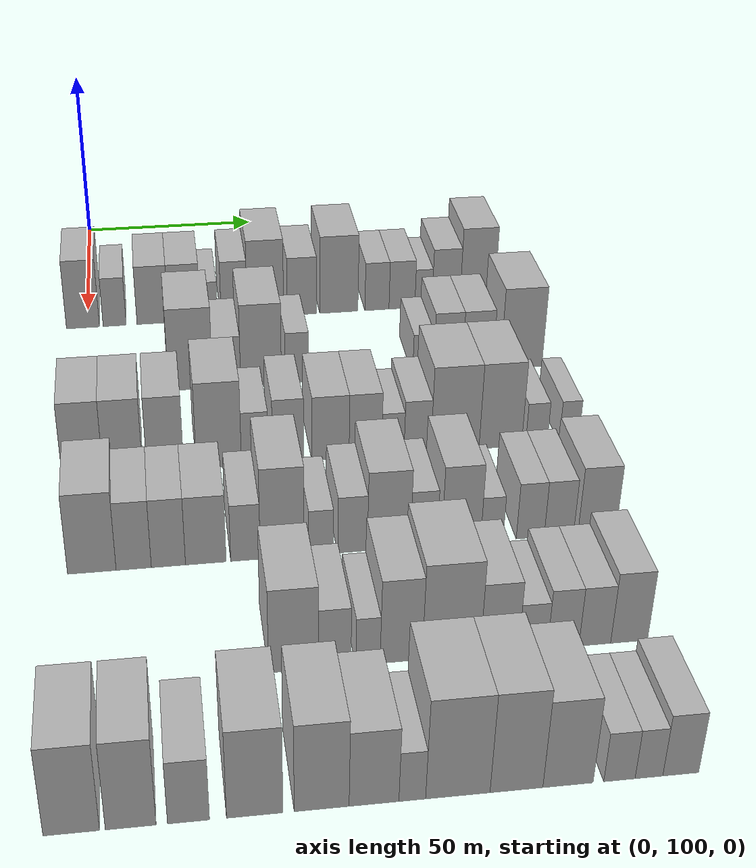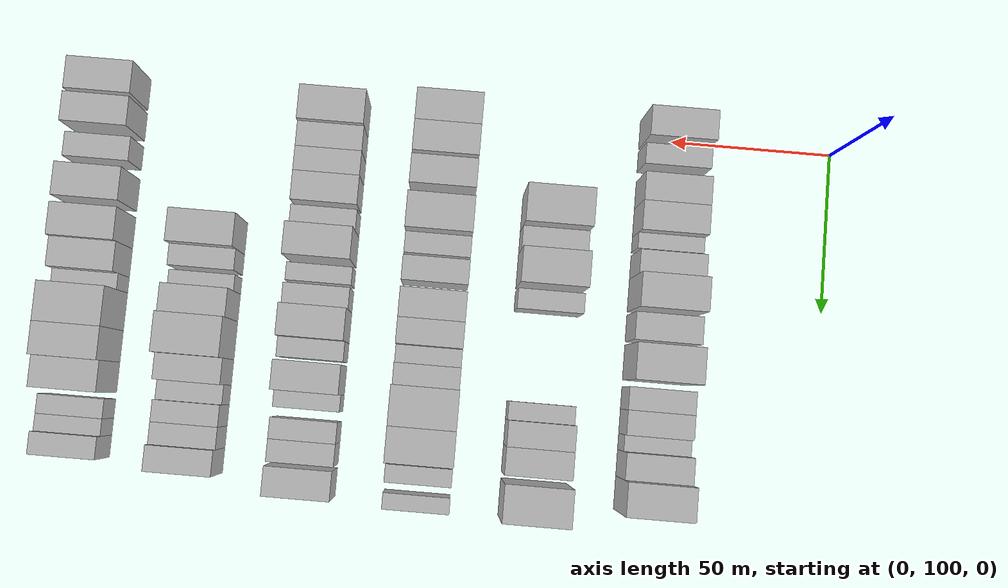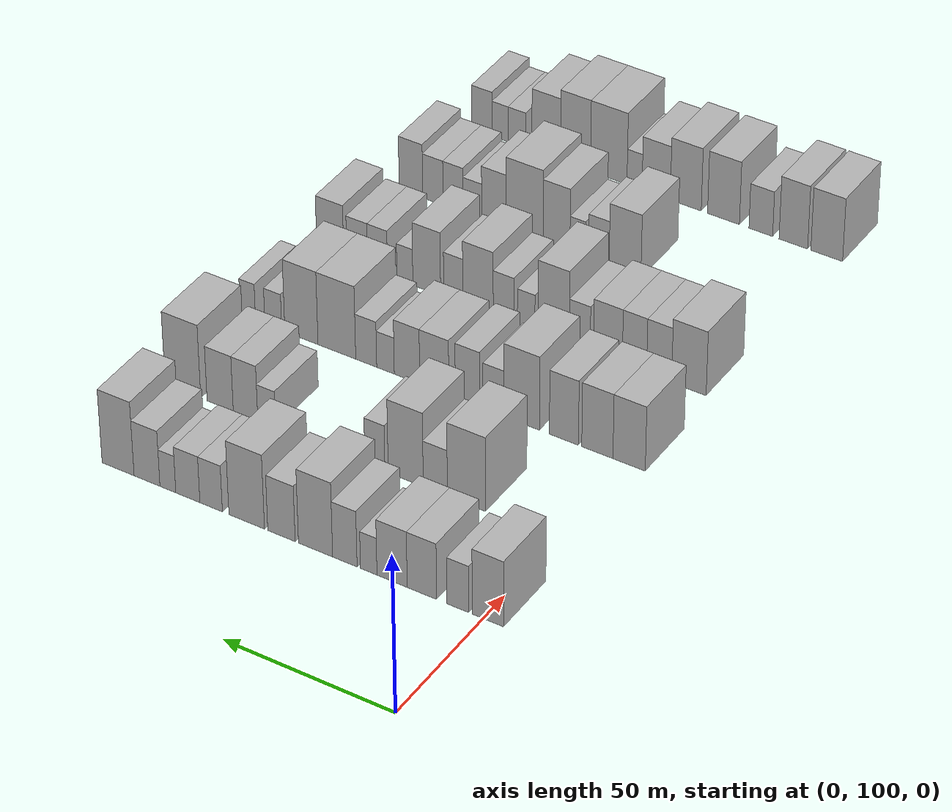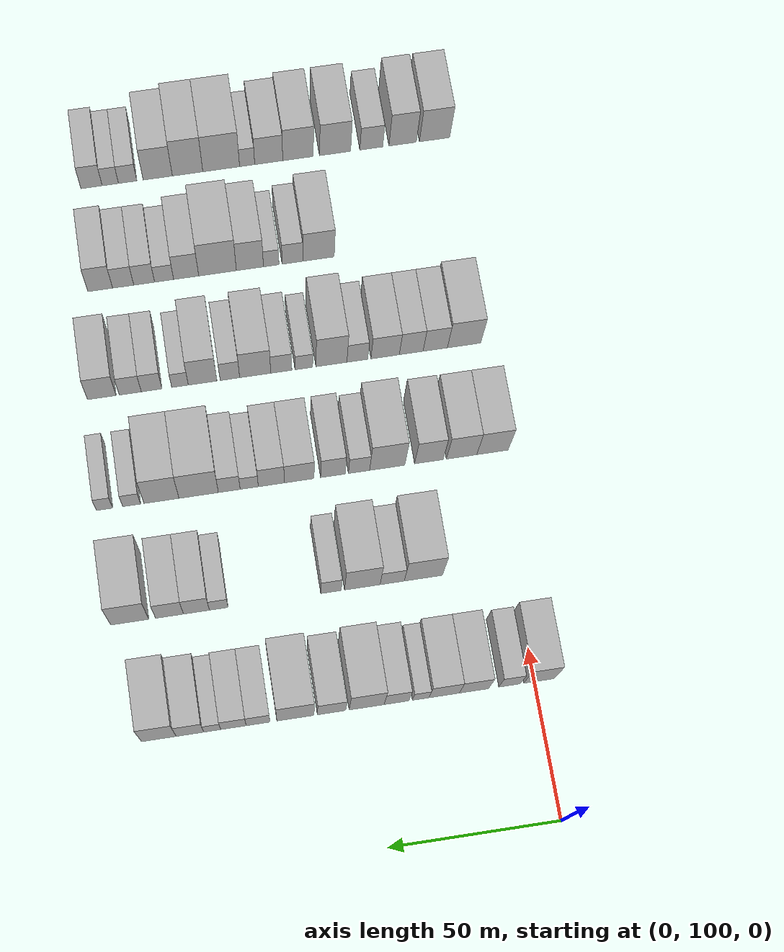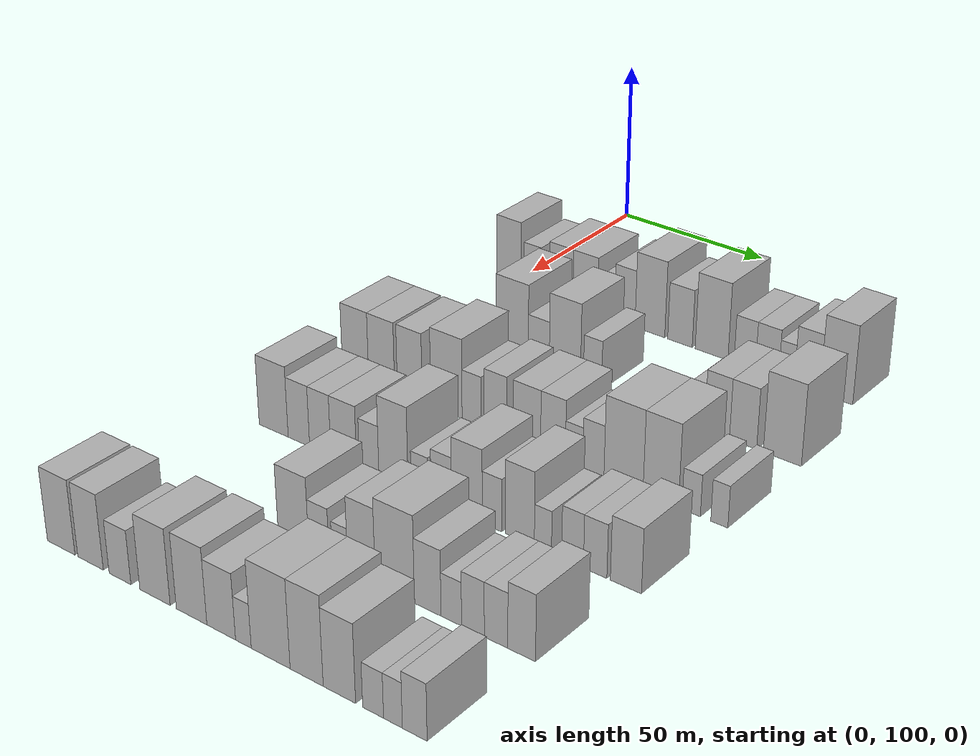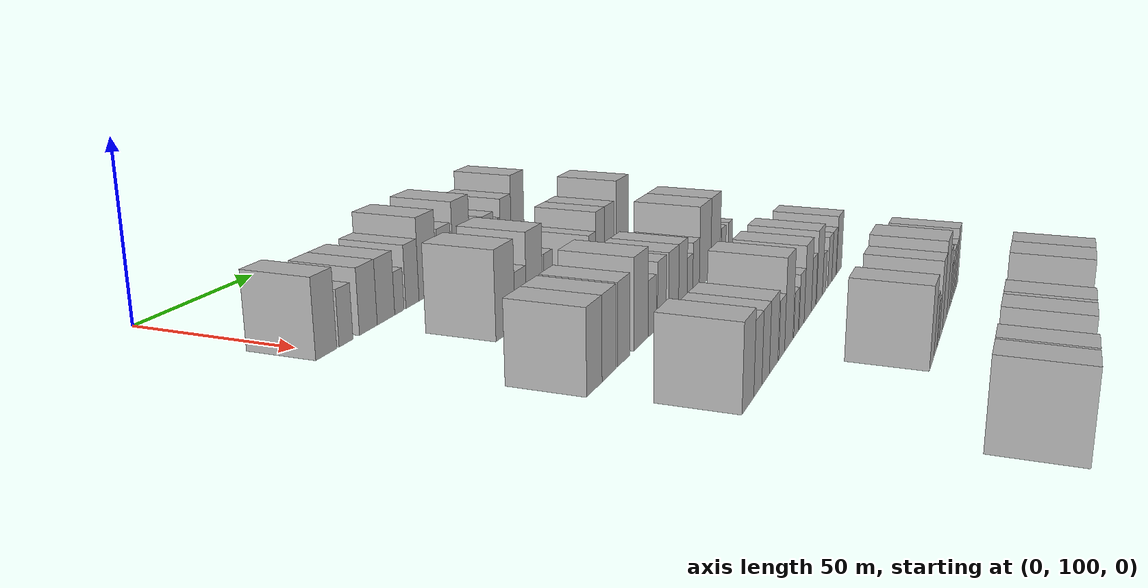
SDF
<sdf version="1.6">
 <world name="default">
  <model name="building_76">
   <static>1</static>
   <pose>50.0000 98.7060 0 0.000000 0.000000 0.000000</pose>
   <link name="link">
    <pose>0 0 10.50 0 0 0</pose>
    <collision name="collision"><geometry><box><size>20.0000 9.0643 21.0000</size></box></geometry></collision>
    <visual name="visual">
     <cast_shadows>0</cast_shadows>
     <geometry><box><size>20.0000 9.0643 21.0000</size></box></geometry>
     <material>
      <script>
       <uri>model://HANNAS_wall/materials/scripts</uri>
       <uri>model://HANNAS_wall/materials/textures</uri>
       <name>vrc/HANNAS_wall</name>
      </script>
     </material>
    </visual>
   </link>
  </model>
  <model name="building_77">
   <static>1</static>
   <pose>50.0000 107.4176 0 0.000000 0.000000 0.000000</pose>
   <link name="link">
    <pose>0 0 7.50 0 0 0</pose>
    <collision name="collision"><geometry><box><size>20.0000 6.3589 15.0000</size></box></geometry></collision>
    <visual name="visual">
     <cast_shadows>0</cast_shadows>
     <geometry><box><size>20.0000 6.3589 15.0000</size></box></geometry>
     <material>
      <script>
       <uri>model://HANNAS_wall/materials/scripts</uri>
       <uri>model://HANNAS_wall/materials/textures</uri>
       <name>vrc/HANNAS_wall</name>
      </script>
     </material>
    </visual>
   </link>
  </model>
  <model name="building_78">
   <static>1</static>
   <pose>50.0000 117.9117 0 0.000000 0.000000 0.000000</pose>
   <link name="link">
    <pose>0 0 9.00 0 0 0</pose>
    <collision name="collision"><geometry><box><size>20.0000 8.6293 18.0000</size></box></geometry></collision>
    <visual name="visual">
     <cast_shadows>0</cast_shadows>
     <geometry><box><size>20.0000 8.6293 18.0000</size></box></geometry>
     <material>
      <script>
       <uri>model://HANNAS_wall/materials/scripts</uri>
       <uri>model://HANNAS_wall/materials/textures</uri>
       <name>vrc/HANNAS_wall</name>
      </script>
     </material>
    </visual>
   </link>
  </model>
  <model name="building_79">
   <static>1</static>
   <pose>50.0000 126.6801 0 0.000000 0.000000 0.000000</pose>
   <link name="link">
    <pose>0 0 9.00 0 0 0</pose>
    <collision name="collision"><geometry><box><size>20.0000 8.9076 18.0000</size></box></geometry></collision>
    <visual name="visual">
     <cast_shadows>0</cast_shadows>
     <geometry><box><size>20.0000 8.9076 18.0000</size></box></geometry>
     <material>
      <script>
       <uri>model://HANNAS_wall/materials/scripts</uri>
       <uri>model://HANNAS_wall/materials/textures</uri>
       <name>vrc/HANNAS_wall</name>
      </script>
     </material>
    </visual>
   </link>
  </model>
  <model name="building_80">
   <static>1</static>
   <pose>50.0000 133.5759 0 0.000000 0.000000 0.000000</pose>
   <link name="link">
    <pose>0 0 6.00 0 0 0</pose>
    <collision name="collision"><geometry><box><size>20.0000 4.8840 12.0000</size></box></geometry></collision>
    <visual name="visual">
     <cast_shadows>0</cast_shadows>
     <geometry><box><size>20.0000 4.8840 12.0000</size></box></geometry>
     <material>
      <script>
       <uri>model://HANNAS_wall/materials/scripts</uri>
       <uri>model://HANNAS_wall/materials/textures</uri>
       <name>vrc/HANNAS_wall</name>
      </script>
     </material>
    </visual>
   </link>
  </model>
  <model name="building_81">
   <static>1</static>
   <pose>50.0000 140.6579 0 0.000000 0.000000 0.000000</pose>
   <link name="link">
    <pose>0 0 9.00 0 0 0</pose>
    <collision name="collision"><geometry><box><size>20.0000 7.2801 18.0000</size></box></geometry></collision>
    <visual name="visual">
     <cast_shadows>0</cast_shadows>
     <geometry><box><size>20.0000 7.2801 18.0000</size></box></geometry>
     <material>
      <script>
       <uri>model://HANNAS_wall/materials/scripts</uri>
       <uri>model://HANNAS_wall/materials/textures</uri>
       <name>vrc/HANNAS_wall</name>
      </script>
     </material>
    </visual>
   </link>
  </model>
  <model name="building_82">
   <static>1</static>
   <pose>50.0000 149.4227 0 0.000000 0.000000 0.000000</pose>
   <link name="link">
    <pose>0 0 12.00 0 0 0</pose>
    <collision name="collision"><geometry><box><size>20.0000 10.2495 24.0000</size></box></geometry></collision>
    <visual name="visual">
     <cast_shadows>0</cast_shadows>
     <geometry><box><size>20.0000 10.2495 24.0000</size></box></geometry>
     <material>
      <script>
       <uri>model://HANNAS_wall/materials/scripts</uri>
       <uri>model://HANNAS_wall/materials/textures</uri>
       <name>vrc/HANNAS_wall</name>
      </script>
     </material>
    </visual>
   </link>
  </model>
  <model name="building_83">
   <static>1</static>
   <pose>50.0000 159.6834 0 0.000000 0.000000 0.000000</pose>
   <link name="link">
    <pose>0 0 9.00 0 0 0</pose>
    <collision name="collision"><geometry><box><size>20.0000 8.2721 18.0000</size></box></geometry></collision>
    <visual name="visual">
     <cast_shadows>0</cast_shadows>
     <geometry><box><size>20.0000 8.2721 18.0000</size></box></geometry>
     <material>
      <script>
       <uri>model://HANNAS_wall/materials/scripts</uri>
       <uri>model://HANNAS_wall/materials/textures</uri>
       <name>vrc/HANNAS_wall</name>
      </script>
     </material>
    </visual>
   </link>
  </model>
  <model name="building_84">
   <static>1</static>
   <pose>50.0000 170.2281 0 0.000000 0.000000 0.000000</pose>
   <link name="link">
    <pose>0 0 12.00 0 0 0</pose>
    <collision name="collision"><geometry><box><size>20.0000 10.8172 24.0000</size></box></geometry></collision>
    <visual name="visual">
     <cast_shadows>0</cast_shadows>
     <geometry><box><size>20.0000 10.8172 24.0000</size></box></geometry>
     <material>
      <script>
       <uri>model://HANNAS_wall/materials/scripts</uri>
       <uri>model://HANNAS_wall/materials/textures</uri>
       <name>vrc/HANNAS_wall</name>
      </script>
     </material>
    </visual>
   </link>
  </model>
  <model name="building_85">
   <static>1</static>
   <pose>50.0000 181.0844 0 0.000000 0.000000 0.000000</pose>
   <link name="link">
    <pose>0 0 7.50 0 0 0</pose>
    <collision name="collision"><geometry><box><size>20.0000 6.8954 15.0000</size></box></geometry></collision>
    <visual name="visual">
     <cast_shadows>0</cast_shadows>
     <geometry><box><size>20.0000 6.8954 15.0000</size></box></geometry>
     <material>
      <script>
       <uri>model://HANNAS_wall/materials/scripts</uri>
       <uri>model://HANNAS_wall/materials/textures</uri>
       <name>vrc/HANNAS_wall</name>
      </script>
     </material>
    </visual>
   </link>
  </model>
  <model name="building_86">
   <static>1</static>
   <pose>50.0000 188.2424 0 0.000000 0.000000 0.000000</pose>
   <link name="link">
    <pose>0 0 7.50 0 0 0</pose>
    <collision name="collision"><geometry><box><size>20.0000 7.4207 15.0000</size></box></geometry></collision>
    <visual name="visual">
     <cast_shadows>0</cast_shadows>
     <geometry><box><size>20.0000 7.4207 15.0000</size></box></geometry>
     <material>
      <script>
       <uri>model://HANNAS_wall/materials/scripts</uri>
       <uri>model://HANNAS_wall/materials/textures</uri>
       <name>vrc/HANNAS_wall</name>
      </script>
     </material>
    </visual>
   </link>
  </model>
  <model name="building_87">
   <static>1</static>
   <pose>50.0000 194.4109 0 0.000000 0.000000 0.000000</pose>
   <link name="link">
    <pose>0 0 6.00 0 0 0</pose>
    <collision name="collision"><geometry><box><size>20.0000 4.9163 12.0000</size></box></geometry></collision>
    <visual name="visual">
     <cast_shadows>0</cast_shadows>
     <geometry><box><size>20.0000 4.9163 12.0000</size></box></geometry>
     <material>
      <script>
       <uri>model://HANNAS_wall/materials/scripts</uri>
       <uri>model://HANNAS_wall/materials/textures</uri>
       <name>vrc/HANNAS_wall</name>
      </script>
     </material>
    </visual>
   </link>
  </model>
  <model name="building_88">
   <static>1</static>
   <pose>50.0000 200.8878 0 0.000000 0.000000 0.000000</pose>
   <link name="link">
    <pose>0 0 9.00 0 0 0</pose>
    <collision name="collision"><geometry><box><size>20.0000 8.0375 18.0000</size></box></geometry></collision>
    <visual name="visual">
     <cast_shadows>0</cast_shadows>
     <geometry><box><size>20.0000 8.0375 18.0000</size></box></geometry>
     <material>
      <script>
       <uri>model://HANNAS_wall/materials/scripts</uri>
       <uri>model://HANNAS_wall/materials/textures</uri>
       <name>vrc/HANNAS_wall</name>
      </script>
     </material>
    </visual>
   </link>
  </model>
  <model name="building_89">
   <static>1</static>
   <pose>50.0000 209.9086 0 0.000000 0.000000 0.000000</pose>
   <link name="link">
    <pose>0 0 12.00 0 0 0</pose>
    <collision name="collision"><geometry><box><size>20.0000 10.0042 24.0000</size></box></geometry></collision>
    <visual name="visual">
     <cast_shadows>0</cast_shadows>
     <geometry><box><size>20.0000 10.0042 24.0000</size></box></geometry>
     <material>
      <script>
       <uri>model://HANNAS_wall/materials/scripts</uri>
       <uri>model://HANNAS_wall/materials/textures</uri>
       <name>vrc/HANNAS_wall</name>
      </script>
     </material>
    </visual>
   </link>
  </model>
  <model name="building_206">
   <static>1</static>
   <pose>85.0000 126.7617 0 0.000000 0.000000 0.000000</pose>
   <link name="link">
    <pose>0 0 12.00 0 0 0</pose>
    <collision name="collision"><geometry><box><size>20.0000 11.4113 24.0000</size></box></geometry></collision>
    <visual name="visual">
     <cast_shadows>0</cast_shadows>
     <geometry><box><size>20.0000 11.4113 24.0000</size></box></geometry>
     <material>
      <script>
       <uri>model://HANNAS_wall/materials/scripts</uri>
       <uri>model://HANNAS_wall/materials/textures</uri>
       <name>vrc/HANNAS_wall</name>
      </script>
     </material>
    </visual>
   </link>
  </model>
  <model name="building_207">
   <static>1</static>
   <pose>85.0000 136.0954 0 0.000000 0.000000 0.000000</pose>
   <link name="link">
    <pose>0 0 7.50 0 0 0</pose>
    <collision name="collision"><geometry><box><size>20.0000 7.2561 15.0000</size></box></geometry></collision>
    <visual name="visual">
     <cast_shadows>0</cast_shadows>
     <geometry><box><size>20.0000 7.2561 15.0000</size></box></geometry>
     <material>
      <script>
       <uri>model://HANNAS_wall/materials/scripts</uri>
       <uri>model://HANNAS_wall/materials/textures</uri>
       <name>vrc/HANNAS_wall</name>
      </script>
     </material>
    </visual>
   </link>
  </model>
  <model name="building_208">
   <static>1</static>
   <pose>85.0000 145.0219 0 0.000000 0.000000 0.000000</pose>
   <link name="link">
    <pose>0 0 12.00 0 0 0</pose>
    <collision name="collision"><geometry><box><size>20.0000 10.5969 24.0000</size></box></geometry></collision>
    <visual name="visual">
     <cast_shadows>0</cast_shadows>
     <geometry><box><size>20.0000 10.5969 24.0000</size></box></geometry>
     <material>
      <script>
       <uri>model://HANNAS_wall/materials/scripts</uri>
       <uri>model://HANNAS_wall/materials/textures</uri>
       <name>vrc/HANNAS_wall</name>
      </script>
     </material>
    </visual>
   </link>
  </model>
  <model name="building_209">
   <static>1</static>
   <pose>85.0000 154.3644 0 0.000000 0.000000 0.000000</pose>
   <link name="link">
    <pose>0 0 7.50 0 0 0</pose>
    <collision name="collision"><geometry><box><size>20.0000 6.0882 15.0000</size></box></geometry></collision>
    <visual name="visual">
     <cast_shadows>0</cast_shadows>
     <geometry><box><size>20.0000 6.0882 15.0000</size></box></geometry>
     <material>
      <script>
       <uri>model://HANNAS_wall/materials/scripts</uri>
       <uri>model://HANNAS_wall/materials/textures</uri>
       <name>vrc/HANNAS_wall</name>
      </script>
     </material>
    </visual>
   </link>
  </model>
  <model name="building_210">
   <static>1</static>
   <pose>85.0000 187.7151 0 0.000000 0.000000 0.000000</pose>
   <link name="link">
    <pose>0 0 6.00 0 0 0</pose>
    <collision name="collision"><geometry><box><size>20.0000 5.5377 12.0000</size></box></geometry></collision>
    <visual name="visual">
     <cast_shadows>0</cast_shadows>
     <geometry><box><size>20.0000 5.5377 12.0000</size></box></geometry>
     <material>
      <script>
       <uri>model://HANNAS_wall/materials/scripts</uri>
       <uri>model://HANNAS_wall/materials/textures</uri>
       <name>vrc/HANNAS_wall</name>
      </script>
     </material>
    </visual>
   </link>
  </model>
  <model name="building_211">
   <static>1</static>
   <pose>85.0000 194.3301 0 0.000000 0.000000 0.000000</pose>
   <link name="link">
    <pose>0 0 9.00 0 0 0</pose>
    <collision name="collision"><geometry><box><size>20.0000 7.6924 18.0000</size></box></geometry></collision>
    <visual name="visual">
     <cast_shadows>0</cast_shadows>
     <geometry><box><size>20.0000 7.6924 18.0000</size></box></geometry>
     <material>
      <script>
       <uri>model://HANNAS_wall/materials/scripts</uri>
       <uri>model://HANNAS_wall/materials/textures</uri>
       <name>vrc/HANNAS_wall</name>
      </script>
     </material>
    </visual>
   </link>
  </model>
  <model name="building_212">
   <static>1</static>
   <pose>85.0000 202.2963 0 0.000000 0.000000 0.000000</pose>
   <link name="link">
    <pose>0 0 9.00 0 0 0</pose>
    <collision name="collision"><geometry><box><size>20.0000 8.2400 18.0000</size></box></geometry></collision>
    <visual name="visual">
     <cast_shadows>0</cast_shadows>
     <geometry><box><size>20.0000 8.2400 18.0000</size></box></geometry>
     <material>
      <script>
       <uri>model://HANNAS_wall/materials/scripts</uri>
       <uri>model://HANNAS_wall/materials/textures</uri>
       <name>vrc/HANNAS_wall</name>
      </script>
     </material>
    </visual>
   </link>
  </model>
  <model name="building_213">
   <static>1</static>
   <pose>85.0000 214.0444 0 0.000000 0.000000 0.000000</pose>
   <link name="link">
    <pose>0 0 12.00 0 0 0</pose>
    <collision name="collision"><geometry><box><size>20.0000 11.2562 24.0000</size></box></geometry></collision>
    <visual name="visual">
     <cast_shadows>0</cast_shadows>
     <geometry><box><size>20.0000 11.2562 24.0000</size></box></geometry>
     <material>
      <script>
       <uri>model://HANNAS_wall/materials/scripts</uri>
       <uri>model://HANNAS_wall/materials/textures</uri>
       <name>vrc/HANNAS_wall</name>
      </script>
     </material>
    </visual>
   </link>
  </model>
  <model name="building_310">
   <static>1</static>
   <pose>120.0000 99.5489 0 0.000000 0.000000 0.000000</pose>
   <link name="link">
    <pose>0 0 10.50 0 0 0</pose>
    <collision name="collision"><geometry><box><size>20.0000 9.5973 21.0000</size></box></geometry></collision>
    <visual name="visual">
     <cast_shadows>0</cast_shadows>
     <geometry><box><size>20.0000 9.5973 21.0000</size></box></geometry>
     <material>
      <script>
       <uri>model://HANNAS_wall/materials/scripts</uri>
       <uri>model://HANNAS_wall/materials/textures</uri>
       <name>vrc/HANNAS_wall</name>
      </script>
     </material>
    </visual>
   </link>
  </model>
  <model name="building_311">
   <static>1</static>
   <pose>120.0000 109.0068 0 0.000000 0.000000 0.000000</pose>
   <link name="link">
    <pose>0 0 10.50 0 0 0</pose>
    <collision name="collision"><geometry><box><size>20.0000 9.3184 21.0000</size></box></geometry></collision>
    <visual name="visual">
     <cast_shadows>0</cast_shadows>
     <geometry><box><size>20.0000 9.3184 21.0000</size></box></geometry>
     <material>
      <script>
       <uri>model://HANNAS_wall/materials/scripts</uri>
       <uri>model://HANNAS_wall/materials/textures</uri>
       <name>vrc/HANNAS_wall</name>
      </script>
     </material>
    </visual>
   </link>
  </model>
  <model name="building_312">
   <static>1</static>
   <pose>120.0000 119.0253 0 0.000000 0.000000 0.000000</pose>
   <link name="link">
    <pose>0 0 10.50 0 0 0</pose>
    <collision name="collision"><geometry><box><size>20.0000 8.7186 21.0000</size></box></geometry></collision>
    <visual name="visual">
     <cast_shadows>0</cast_shadows>
     <geometry><box><size>20.0000 8.7186 21.0000</size></box></geometry>
     <material>
      <script>
       <uri>model://HANNAS_wall/materials/scripts</uri>
       <uri>model://HANNAS_wall/materials/textures</uri>
       <name>vrc/HANNAS_wall</name>
      </script>
     </material>
    </visual>
   </link>
  </model>
  <model name="building_313">
   <static>1</static>
   <pose>120.0000 131.7497 0 0.000000 0.000000 0.000000</pose>
   <link name="link">
    <pose>0 0 12.00 0 0 0</pose>
    <collision name="collision"><geometry><box><size>20.0000 10.7303 24.0000</size></box></geometry></collision>
    <visual name="visual">
     <cast_shadows>0</cast_shadows>
     <geometry><box><size>20.0000 10.7303 24.0000</size></box></geometry>
     <material>
      <script>
       <uri>model://HANNAS_wall/materials/scripts</uri>
       <uri>model://HANNAS_wall/materials/textures</uri>
       <name>vrc/HANNAS_wall</name>
      </script>
     </material>
    </visual>
   </link>
  </model>
  <model name="building_314">
   <static>1</static>
   <pose>120.0000 140.3352 0 0.000000 0.000000 0.000000</pose>
   <link name="link">
    <pose>0 0 7.50 0 0 0</pose>
    <collision name="collision"><geometry><box><size>20.0000 6.4406 15.0000</size></box></geometry></collision>
    <visual name="visual">
     <cast_shadows>0</cast_shadows>
     <geometry><box><size>20.0000 6.4406 15.0000</size></box></geometry>
     <material>
      <script>
       <uri>model://HANNAS_wall/materials/scripts</uri>
       <uri>model://HANNAS_wall/materials/textures</uri>
       <name>vrc/HANNAS_wall</name>
      </script>
     </material>
    </visual>
   </link>
  </model>
  <model name="building_315">
   <static>1</static>
   <pose>120.0000 148.2932 0 0.000000 0.000000 0.000000</pose>
   <link name="link">
    <pose>0 0 9.00 0 0 0</pose>
    <collision name="collision"><geometry><box><size>20.0000 7.4754 18.0000</size></box></geometry></collision>
    <visual name="visual">
     <cast_shadows>0</cast_shadows>
     <geometry><box><size>20.0000 7.4754 18.0000</size></box></geometry>
     <material>
      <script>
       <uri>model://HANNAS_wall/materials/scripts</uri>
       <uri>model://HANNAS_wall/materials/textures</uri>
       <name>vrc/HANNAS_wall</name>
      </script>
     </material>
    </visual>
   </link>
  </model>
  <model name="building_316">
   <static>1</static>
   <pose>120.0000 158.5292 0 0.000000 0.000000 0.000000</pose>
   <link name="link">
    <pose>0 0 9.00 0 0 0</pose>
    <collision name="collision"><geometry><box><size>20.0000 8.9966 18.0000</size></box></geometry></collision>
    <visual name="visual">
     <cast_shadows>0</cast_shadows>
     <geometry><box><size>20.0000 8.9966 18.0000</size></box></geometry>
     <material>
      <script>
       <uri>model://HANNAS_wall/materials/scripts</uri>
       <uri>model://HANNAS_wall/materials/textures</uri>
       <name>vrc/HANNAS_wall</name>
      </script>
     </material>
    </visual>
   </link>
  </model>
  <model name="building_317">
   <static>1</static>
   <pose>120.0000 166.9829 0 0.000000 0.000000 0.000000</pose>
   <link name="link">
    <pose>0 0 9.00 0 0 0</pose>
    <collision name="collision"><geometry><box><size>20.0000 7.9108 18.0000</size></box></geometry></collision>
    <visual name="visual">
     <cast_shadows>0</cast_shadows>
     <geometry><box><size>20.0000 7.9108 18.0000</size></box></geometry>
     <material>
      <script>
       <uri>model://HANNAS_wall/materials/scripts</uri>
       <uri>model://HANNAS_wall/materials/textures</uri>
       <name>vrc/HANNAS_wall</name>
      </script>
     </material>
    </visual>
   </link>
  </model>
  <model name="building_318">
   <static>1</static>
   <pose>120.0000 173.6834 0 0.000000 0.000000 0.000000</pose>
   <link name="link">
    <pose>0 0 6.00 0 0 0</pose>
    <collision name="collision"><geometry><box><size>20.0000 5.4902 12.0000</size></box></geometry></collision>
    <visual name="visual">
     <cast_shadows>0</cast_shadows>
     <geometry><box><size>20.0000 5.4902 12.0000</size></box></geometry>
     <material>
      <script>
       <uri>model://HANNAS_wall/materials/scripts</uri>
       <uri>model://HANNAS_wall/materials/textures</uri>
       <name>vrc/HANNAS_wall</name>
      </script>
     </material>
    </visual>
   </link>
  </model>
  <model name="building_319">
   <static>1</static>
   <pose>120.0000 179.7215 0 0.000000 0.000000 0.000000</pose>
   <link name="link">
    <pose>0 0 7.50 0 0 0</pose>
    <collision name="collision"><geometry><box><size>20.0000 6.5859 15.0000</size></box></geometry></collision>
    <visual name="visual">
     <cast_shadows>0</cast_shadows>
     <geometry><box><size>20.0000 6.5859 15.0000</size></box></geometry>
     <material>
      <script>
       <uri>model://HANNAS_wall/materials/scripts</uri>
       <uri>model://HANNAS_wall/materials/textures</uri>
       <name>vrc/HANNAS_wall</name>
      </script>
     </material>
    </visual>
   </link>
  </model>
  <model name="building_320">
   <static>1</static>
   <pose>120.0000 188.9652 0 0.000000 0.000000 0.000000</pose>
   <link name="link">
    <pose>0 0 12.00 0 0 0</pose>
    <collision name="collision"><geometry><box><size>20.0000 11.9015 24.0000</size></box></geometry></collision>
    <visual name="visual">
     <cast_shadows>0</cast_shadows>
     <geometry><box><size>20.0000 11.9015 24.0000</size></box></geometry>
     <material>
      <script>
       <uri>model://HANNAS_wall/materials/scripts</uri>
       <uri>model://HANNAS_wall/materials/textures</uri>
       <name>vrc/HANNAS_wall</name>
      </script>
     </material>
    </visual>
   </link>
  </model>
  <model name="building_321">
   <static>1</static>
   <pose>120.0000 200.1909 0 0.000000 0.000000 0.000000</pose>
   <link name="link">
    <pose>0 0 12.00 0 0 0</pose>
    <collision name="collision"><geometry><box><size>20.0000 10.5499 24.0000</size></box></geometry></collision>
    <visual name="visual">
     <cast_shadows>0</cast_shadows>
     <geometry><box><size>20.0000 10.5499 24.0000</size></box></geometry>
     <material>
      <script>
       <uri>model://HANNAS_wall/materials/scripts</uri>
       <uri>model://HANNAS_wall/materials/textures</uri>
       <name>vrc/HANNAS_wall</name>
      </script>
     </material>
    </visual>
   </link>
  </model>
  <model name="building_322">
   <static>1</static>
   <pose>120.0000 209.1626 0 0.000000 0.000000 0.000000</pose>
   <link name="link">
    <pose>0 0 6.00 0 0 0</pose>
    <collision name="collision"><geometry><box><size>20.0000 5.3935 12.0000</size></box></geometry></collision>
    <visual name="visual">
     <cast_shadows>0</cast_shadows>
     <geometry><box><size>20.0000 5.3935 12.0000</size></box></geometry>
     <material>
      <script>
       <uri>model://HANNAS_wall/materials/scripts</uri>
       <uri>model://HANNAS_wall/materials/textures</uri>
       <name>vrc/HANNAS_wall</name>
      </script>
     </material>
    </visual>
   </link>
  </model>
  <model name="building_323">
   <static>1</static>
   <pose>120.0000 217.3057 0 0.000000 0.000000 0.000000</pose>
   <link name="link">
    <pose>0 0 6.00 0 0 0</pose>
    <collision name="collision"><geometry><box><size>20.0000 4.8926 12.0000</size></box></geometry></collision>
    <visual name="visual">
     <cast_shadows>0</cast_shadows>
     <geometry><box><size>20.0000 4.8926 12.0000</size></box></geometry>
     <material>
      <script>
       <uri>model://HANNAS_wall/materials/scripts</uri>
       <uri>model://HANNAS_wall/materials/textures</uri>
       <name>vrc/HANNAS_wall</name>
      </script>
     </material>
    </visual>
   </link>
  </model>
  <model name="building_440">
   <static>1</static>
   <pose>155.0000 101.9690 0 0.000000 0.000000 0.000000</pose>
   <link name="link">
    <pose>0 0 10.50 0 0 0</pose>
    <collision name="collision"><geometry><box><size>20.0000 10.3962 21.0000</size></box></geometry></collision>
    <visual name="visual">
     <cast_shadows>0</cast_shadows>
     <geometry><box><size>20.0000 10.3962 21.0000</size></box></geometry>
     <material>
      <script>
       <uri>model://HANNAS_wall/materials/scripts</uri>
       <uri>model://HANNAS_wall/materials/textures</uri>
       <name>vrc/HANNAS_wall</name>
      </script>
     </material>
    </visual>
   </link>
  </model>
  <model name="building_441">
   <static>1</static>
   <pose>155.0000 110.9566 0 0.000000 0.000000 0.000000</pose>
   <link name="link">
    <pose>0 0 9.00 0 0 0</pose>
    <collision name="collision"><geometry><box><size>20.0000 7.5789 18.0000</size></box></geometry></collision>
    <visual name="visual">
     <cast_shadows>0</cast_shadows>
     <geometry><box><size>20.0000 7.5789 18.0000</size></box></geometry>
     <material>
      <script>
       <uri>model://HANNAS_wall/materials/scripts</uri>
       <uri>model://HANNAS_wall/materials/textures</uri>
       <name>vrc/HANNAS_wall</name>
      </script>
     </material>
    </visual>
   </link>
  </model>
  <model name="building_442">
   <static>1</static>
   <pose>155.0000 118.4421 0 0.000000 0.000000 0.000000</pose>
   <link name="link">
    <pose>0 0 9.00 0 0 0</pose>
    <collision name="collision"><geometry><box><size>20.0000 7.3921 18.0000</size></box></geometry></collision>
    <visual name="visual">
     <cast_shadows>0</cast_shadows>
     <geometry><box><size>20.0000 7.3921 18.0000</size></box></geometry>
     <material>
      <script>
       <uri>model://HANNAS_wall/materials/scripts</uri>
       <uri>model://HANNAS_wall/materials/textures</uri>
       <name>vrc/HANNAS_wall</name>
      </script>
     </material>
    </visual>
   </link>
  </model>
  <model name="building_443">
   <static>1</static>
   <pose>155.0000 126.5543 0 0.000000 0.000000 0.000000</pose>
   <link name="link">
    <pose>0 0 9.00 0 0 0</pose>
    <collision name="collision"><geometry><box><size>20.0000 8.8324 18.0000</size></box></geometry></collision>
    <visual name="visual">
     <cast_shadows>0</cast_shadows>
     <geometry><box><size>20.0000 8.8324 18.0000</size></box></geometry>
     <material>
      <script>
       <uri>model://HANNAS_wall/materials/scripts</uri>
       <uri>model://HANNAS_wall/materials/textures</uri>
       <name>vrc/HANNAS_wall</name>
      </script>
     </material>
    </visual>
   </link>
  </model>
  <model name="building_444">
   <static>1</static>
   <pose>155.0000 135.2045 0 0.000000 0.000000 0.000000</pose>
   <link name="link">
    <pose>0 0 7.50 0 0 0</pose>
    <collision name="collision"><geometry><box><size>20.0000 6.4680 15.0000</size></box></geometry></collision>
    <visual name="visual">
     <cast_shadows>0</cast_shadows>
     <geometry><box><size>20.0000 6.4680 15.0000</size></box></geometry>
     <material>
      <script>
       <uri>model://HANNAS_wall/materials/scripts</uri>
       <uri>model://HANNAS_wall/materials/textures</uri>
       <name>vrc/HANNAS_wall</name>
      </script>
     </material>
    </visual>
   </link>
  </model>
  <model name="building_445">
   <static>1</static>
   <pose>155.0000 143.2508 0 0.000000 0.000000 0.000000</pose>
   <link name="link">
    <pose>0 0 12.00 0 0 0</pose>
    <collision name="collision"><geometry><box><size>20.0000 9.6246 24.0000</size></box></geometry></collision>
    <visual name="visual">
     <cast_shadows>0</cast_shadows>
     <geometry><box><size>20.0000 9.6246 24.0000</size></box></geometry>
     <material>
      <script>
       <uri>model://HANNAS_wall/materials/scripts</uri>
       <uri>model://HANNAS_wall/materials/textures</uri>
       <name>vrc/HANNAS_wall</name>
      </script>
     </material>
    </visual>
   </link>
  </model>
  <model name="building_446">
   <static>1</static>
   <pose>155.0000 151.7857 0 0.000000 0.000000 0.000000</pose>
   <link name="link">
    <pose>0 0 6.00 0 0 0</pose>
    <collision name="collision"><geometry><box><size>20.0000 5.4452 12.0000</size></box></geometry></collision>
    <visual name="visual">
     <cast_shadows>0</cast_shadows>
     <geometry><box><size>20.0000 5.4452 12.0000</size></box></geometry>
     <material>
      <script>
       <uri>model://HANNAS_wall/materials/scripts</uri>
       <uri>model://HANNAS_wall/materials/textures</uri>
       <name>vrc/HANNAS_wall</name>
      </script>
     </material>
    </visual>
   </link>
  </model>
  <model name="building_447">
   <static>1</static>
   <pose>155.0000 158.7790 0 0.000000 0.000000 0.000000</pose>
   <link name="link">
    <pose>0 0 7.50 0 0 0</pose>
    <collision name="collision"><geometry><box><size>20.0000 6.5415 15.0000</size></box></geometry></collision>
    <visual name="visual">
     <cast_shadows>0</cast_shadows>
     <geometry><box><size>20.0000 6.5415 15.0000</size></box></geometry>
     <material>
      <script>
       <uri>model://HANNAS_wall/materials/scripts</uri>
       <uri>model://HANNAS_wall/materials/textures</uri>
       <name>vrc/HANNAS_wall</name>
      </script>
     </material>
    </visual>
   </link>
  </model>
  <model name="building_448">
   <static>1</static>
   <pose>155.0000 166.8410 0 0.000000 0.000000 0.000000</pose>
   <link name="link">
    <pose>0 0 10.50 0 0 0</pose>
    <collision name="collision"><geometry><box><size>20.0000 9.5825 21.0000</size></box></geometry></collision>
    <visual name="visual">
     <cast_shadows>0</cast_shadows>
     <geometry><box><size>20.0000 9.5825 21.0000</size></box></geometry>
     <material>
      <script>
       <uri>model://HANNAS_wall/materials/scripts</uri>
       <uri>model://HANNAS_wall/materials/textures</uri>
       <name>vrc/HANNAS_wall</name>
      </script>
     </material>
    </visual>
   </link>
  </model>
  <model name="building_449">
   <static>1</static>
   <pose>155.0000 174.6378 0 0.000000 0.000000 0.000000</pose>
   <link name="link">
    <pose>0 0 7.50 0 0 0</pose>
    <collision name="collision"><geometry><box><size>20.0000 6.0113 15.0000</size></box></geometry></collision>
    <visual name="visual">
     <cast_shadows>0</cast_shadows>
     <geometry><box><size>20.0000 6.0113 15.0000</size></box></geometry>
     <material>
      <script>
       <uri>model://HANNAS_wall/materials/scripts</uri>
       <uri>model://HANNAS_wall/materials/textures</uri>
       <name>vrc/HANNAS_wall</name>
      </script>
     </material>
    </visual>
   </link>
  </model>
  <model name="building_450">
   <static>1</static>
   <pose>155.0000 183.0548 0 0.000000 0.000000 0.000000</pose>
   <link name="link">
    <pose>0 0 10.50 0 0 0</pose>
    <collision name="collision"><geometry><box><size>20.0000 8.8227 21.0000</size></box></geometry></collision>
    <visual name="visual">
     <cast_shadows>0</cast_shadows>
     <geometry><box><size>20.0000 8.8227 21.0000</size></box></geometry>
     <material>
      <script>
       <uri>model://HANNAS_wall/materials/scripts</uri>
       <uri>model://HANNAS_wall/materials/textures</uri>
       <name>vrc/HANNAS_wall</name>
      </script>
     </material>
    </visual>
   </link>
  </model>
  <model name="building_451">
   <static>1</static>
   <pose>155.0000 190.0133 0 0.000000 0.000000 0.000000</pose>
   <link name="link">
    <pose>0 0 6.00 0 0 0</pose>
    <collision name="collision"><geometry><box><size>20.0000 5.0944 12.0000</size></box></geometry></collision>
    <visual name="visual">
     <cast_shadows>0</cast_shadows>
     <geometry><box><size>20.0000 5.0944 12.0000</size></box></geometry>
     <material>
      <script>
       <uri>model://HANNAS_wall/materials/scripts</uri>
       <uri>model://HANNAS_wall/materials/textures</uri>
       <name>vrc/HANNAS_wall</name>
      </script>
     </material>
    </visual>
   </link>
  </model>
  <model name="building_452">
   <static>1</static>
   <pose>155.0000 198.7390 0 0.000000 0.000000 0.000000</pose>
   <link name="link">
    <pose>0 0 7.50 0 0 0</pose>
    <collision name="collision"><geometry><box><size>20.0000 6.3568 15.0000</size></box></geometry></collision>
    <visual name="visual">
     <cast_shadows>0</cast_shadows>
     <geometry><box><size>20.0000 6.3568 15.0000</size></box></geometry>
     <material>
      <script>
       <uri>model://HANNAS_wall/materials/scripts</uri>
       <uri>model://HANNAS_wall/materials/textures</uri>
       <name>vrc/HANNAS_wall</name>
      </script>
     </material>
    </visual>
   </link>
  </model>
  <model name="building_453">
   <static>1</static>
   <pose>155.0000 205.2823 0 0.000000 0.000000 0.000000</pose>
   <link name="link">
    <pose>0 0 7.50 0 0 0</pose>
    <collision name="collision"><geometry><box><size>20.0000 6.7298 15.0000</size></box></geometry></collision>
    <visual name="visual">
     <cast_shadows>0</cast_shadows>
     <geometry><box><size>20.0000 6.7298 15.0000</size></box></geometry>
     <material>
      <script>
       <uri>model://HANNAS_wall/materials/scripts</uri>
       <uri>model://HANNAS_wall/materials/textures</uri>
       <name>vrc/HANNAS_wall</name>
      </script>
     </material>
    </visual>
   </link>
  </model>
  <model name="building_454">
   <static>1</static>
   <pose>155.0000 214.0289 0 0.000000 0.000000 0.000000</pose>
   <link name="link">
    <pose>0 0 9.00 0 0 0</pose>
    <collision name="collision"><geometry><box><size>20.0000 8.7636 18.0000</size></box></geometry></collision>
    <visual name="visual">
     <cast_shadows>0</cast_shadows>
     <geometry><box><size>20.0000 8.7636 18.0000</size></box></geometry>
     <material>
      <script>
       <uri>model://HANNAS_wall/materials/scripts</uri>
       <uri>model://HANNAS_wall/materials/textures</uri>
       <name>vrc/HANNAS_wall</name>
      </script>
     </material>
    </visual>
   </link>
  </model>
  <model name="building_559">
   <static>1</static>
   <pose>190.0000 141.8607 0 0.000000 0.000000 0.000000</pose>
   <link name="link">
    <pose>0 0 10.50 0 0 0</pose>
    <collision name="collision"><geometry><box><size>20.0000 9.9490 21.0000</size></box></geometry></collision>
    <visual name="visual">
     <cast_shadows>0</cast_shadows>
     <geometry><box><size>20.0000 9.9490 21.0000</size></box></geometry>
     <material>
      <script>
       <uri>model://HANNAS_wall/materials/scripts</uri>
       <uri>model://HANNAS_wall/materials/textures</uri>
       <name>vrc/HANNAS_wall</name>
      </script>
     </material>
    </visual>
   </link>
  </model>
  <model name="building_560">
   <static>1</static>
   <pose>190.0000 150.0757 0 0.000000 0.000000 0.000000</pose>
   <link name="link">
    <pose>0 0 7.50 0 0 0</pose>
    <collision name="collision"><geometry><box><size>20.0000 6.4811 15.0000</size></box></geometry></collision>
    <visual name="visual">
     <cast_shadows>0</cast_shadows>
     <geometry><box><size>20.0000 6.4811 15.0000</size></box></geometry>
     <material>
      <script>
       <uri>model://HANNAS_wall/materials/scripts</uri>
       <uri>model://HANNAS_wall/materials/textures</uri>
       <name>vrc/HANNAS_wall</name>
      </script>
     </material>
    </visual>
   </link>
  </model>
  <model name="building_561">
   <static>1</static>
   <pose>190.0000 156.7610 0 0.000000 0.000000 0.000000</pose>
   <link name="link">
    <pose>0 0 6.00 0 0 0</pose>
    <collision name="collision"><geometry><box><size>20.0000 4.8895 12.0000</size></box></geometry></collision>
    <visual name="visual">
     <cast_shadows>0</cast_shadows>
     <geometry><box><size>20.0000 4.8895 12.0000</size></box></geometry>
     <material>
      <script>
       <uri>model://HANNAS_wall/materials/scripts</uri>
       <uri>model://HANNAS_wall/materials/textures</uri>
       <name>vrc/HANNAS_wall</name>
      </script>
     </material>
    </visual>
   </link>
  </model>
  <model name="building_562">
   <static>1</static>
   <pose>190.0000 163.4603 0 0.000000 0.000000 0.000000</pose>
   <link name="link">
    <pose>0 0 10.50 0 0 0</pose>
    <collision name="collision"><geometry><box><size>20.0000 8.5091 21.0000</size></box></geometry></collision>
    <visual name="visual">
     <cast_shadows>0</cast_shadows>
     <geometry><box><size>20.0000 8.5091 21.0000</size></box></geometry>
     <material>
      <script>
       <uri>model://HANNAS_wall/materials/scripts</uri>
       <uri>model://HANNAS_wall/materials/textures</uri>
       <name>vrc/HANNAS_wall</name>
      </script>
     </material>
    </visual>
   </link>
  </model>
  <model name="building_563">
   <static>1</static>
   <pose>190.0000 173.6327 0 0.000000 0.000000 0.000000</pose>
   <link name="link">
    <pose>0 0 12.00 0 0 0</pose>
    <collision name="collision"><geometry><box><size>20.0000 11.8357 24.0000</size></box></geometry></collision>
    <visual name="visual">
     <cast_shadows>0</cast_shadows>
     <geometry><box><size>20.0000 11.8357 24.0000</size></box></geometry>
     <material>
      <script>
       <uri>model://HANNAS_wall/materials/scripts</uri>
       <uri>model://HANNAS_wall/materials/textures</uri>
       <name>vrc/HANNAS_wall</name>
      </script>
     </material>
    </visual>
   </link>
  </model>
  <model name="building_564">
   <static>1</static>
   <pose>190.0000 183.4857 0 0.000000 0.000000 0.000000</pose>
   <link name="link">
    <pose>0 0 9.00 0 0 0</pose>
    <collision name="collision"><geometry><box><size>20.0000 7.8702 18.0000</size></box></geometry></collision>
    <visual name="visual">
     <cast_shadows>0</cast_shadows>
     <geometry><box><size>20.0000 7.8702 18.0000</size></box></geometry>
     <material>
      <script>
       <uri>model://HANNAS_wall/materials/scripts</uri>
       <uri>model://HANNAS_wall/materials/textures</uri>
       <name>vrc/HANNAS_wall</name>
      </script>
     </material>
    </visual>
   </link>
  </model>
  <model name="building_565">
   <static>1</static>
   <pose>190.0000 190.4051 0 0.000000 0.000000 0.000000</pose>
   <link name="link">
    <pose>0 0 6.00 0 0 0</pose>
    <collision name="collision"><geometry><box><size>20.0000 5.9687 12.0000</size></box></geometry></collision>
    <visual name="visual">
     <cast_shadows>0</cast_shadows>
     <geometry><box><size>20.0000 5.9687 12.0000</size></box></geometry>
     <material>
      <script>
       <uri>model://HANNAS_wall/materials/scripts</uri>
       <uri>model://HANNAS_wall/materials/textures</uri>
       <name>vrc/HANNAS_wall</name>
      </script>
     </material>
    </visual>
   </link>
  </model>
  <model name="building_566">
   <static>1</static>
   <pose>190.0000 196.6550 0 0.000000 0.000000 0.000000</pose>
   <link name="link">
    <pose>0 0 7.50 0 0 0</pose>
    <collision name="collision"><geometry><box><size>20.0000 6.5310 15.0000</size></box></geometry></collision>
    <visual name="visual">
     <cast_shadows>0</cast_shadows>
     <geometry><box><size>20.0000 6.5310 15.0000</size></box></geometry>
     <material>
      <script>
       <uri>model://HANNAS_wall/materials/scripts</uri>
       <uri>model://HANNAS_wall/materials/textures</uri>
       <name>vrc/HANNAS_wall</name>
      </script>
     </material>
    </visual>
   </link>
  </model>
  <model name="building_567">
   <static>1</static>
   <pose>190.0000 203.2332 0 0.000000 0.000000 0.000000</pose>
   <link name="link">
    <pose>0 0 7.50 0 0 0</pose>
    <collision name="collision"><geometry><box><size>20.0000 6.6255 15.0000</size></box></geometry></collision>
    <visual name="visual">
     <cast_shadows>0</cast_shadows>
     <geometry><box><size>20.0000 6.6255 15.0000</size></box></geometry>
     <material>
      <script>
       <uri>model://HANNAS_wall/materials/scripts</uri>
       <uri>model://HANNAS_wall/materials/textures</uri>
       <name>vrc/HANNAS_wall</name>
      </script>
     </material>
    </visual>
   </link>
  </model>
  <model name="building_568">
   <static>1</static>
   <pose>190.0000 210.4005 0 0.000000 0.000000 0.000000</pose>
   <link name="link">
    <pose>0 0 9.00 0 0 0</pose>
    <collision name="collision"><geometry><box><size>20.0000 7.7090 18.0000</size></box></geometry></collision>
    <visual name="visual">
     <cast_shadows>0</cast_shadows>
     <geometry><box><size>20.0000 7.7090 18.0000</size></box></geometry>
     <material>
      <script>
       <uri>model://HANNAS_wall/materials/scripts</uri>
       <uri>model://HANNAS_wall/materials/textures</uri>
       <name>vrc/HANNAS_wall</name>
      </script>
     </material>
    </visual>
   </link>
  </model>
  <model name="building_687">
   <static>1</static>
   <pose>225.0000 98.9508 0 0.000000 0.000000 0.000000</pose>
   <link name="link">
    <pose>0 0 10.50 0 0 0</pose>
    <collision name="collision"><geometry><box><size>20.0000 9.7866 21.0000</size></box></geometry></collision>
    <visual name="visual">
     <cast_shadows>0</cast_shadows>
     <geometry><box><size>20.0000 9.7866 21.0000</size></box></geometry>
     <material>
      <script>
       <uri>model://HANNAS_wall/materials/scripts</uri>
       <uri>model://HANNAS_wall/materials/textures</uri>
       <name>vrc/HANNAS_wall</name>
      </script>
     </material>
    </visual>
   </link>
  </model>
  <model name="building_688">
   <static>1</static>
   <pose>225.0000 109.2734 0 0.000000 0.000000 0.000000</pose>
   <link name="link">
    <pose>0 0 10.50 0 0 0</pose>
    <collision name="collision"><geometry><box><size>20.0000 8.8586 21.0000</size></box></geometry></collision>
    <visual name="visual">
     <cast_shadows>0</cast_shadows>
     <geometry><box><size>20.0000 8.8586 21.0000</size></box></geometry>
     <material>
      <script>
       <uri>model://HANNAS_wall/materials/scripts</uri>
       <uri>model://HANNAS_wall/materials/textures</uri>
       <name>vrc/HANNAS_wall</name>
      </script>
     </material>
    </visual>
   </link>
  </model>
  <model name="building_689">
   <static>1</static>
   <pose>225.0000 119.3945 0 0.000000 0.000000 0.000000</pose>
   <link name="link">
    <pose>0 0 7.50 0 0 0</pose>
    <collision name="collision"><geometry><box><size>20.0000 7.3836 15.0000</size></box></geometry></collision>
    <visual name="visual">
     <cast_shadows>0</cast_shadows>
     <geometry><box><size>20.0000 7.3836 15.0000</size></box></geometry>
     <material>
      <script>
       <uri>model://HANNAS_wall/materials/scripts</uri>
       <uri>model://HANNAS_wall/materials/textures</uri>
       <name>vrc/HANNAS_wall</name>
      </script>
     </material>
    </visual>
   </link>
  </model>
  <model name="building_690">
   <static>1</static>
   <pose>225.0000 131.0954 0 0.000000 0.000000 0.000000</pose>
   <link name="link">
    <pose>0 0 10.50 0 0 0</pose>
    <collision name="collision"><geometry><box><size>20.0000 10.0183 21.0000</size></box></geometry></collision>
    <visual name="visual">
     <cast_shadows>0</cast_shadows>
     <geometry><box><size>20.0000 10.0183 21.0000</size></box></geometry>
     <material>
      <script>
       <uri>model://HANNAS_wall/materials/scripts</uri>
       <uri>model://HANNAS_wall/materials/textures</uri>
       <name>vrc/HANNAS_wall</name>
      </script>
     </material>
    </visual>
   </link>
  </model>
  <model name="building_691">
   <static>1</static>
   <pose>225.0000 143.0191 0 0.000000 0.000000 0.000000</pose>
   <link name="link">
    <pose>0 0 10.50 0 0 0</pose>
    <collision name="collision"><geometry><box><size>20.0000 9.8291 21.0000</size></box></geometry></collision>
    <visual name="visual">
     <cast_shadows>0</cast_shadows>
     <geometry><box><size>20.0000 9.8291 21.0000</size></box></geometry>
     <material>
      <script>
       <uri>model://HANNAS_wall/materials/scripts</uri>
       <uri>model://HANNAS_wall/materials/textures</uri>
       <name>vrc/HANNAS_wall</name>
      </script>
     </material>
    </visual>
   </link>
  </model>
  <model name="building_692">
   <static>1</static>
   <pose>225.0000 152.4309 0 0.000000 0.000000 0.000000</pose>
   <link name="link">
    <pose>0 0 9.00 0 0 0</pose>
    <collision name="collision"><geometry><box><size>20.0000 8.9945 18.0000</size></box></geometry></collision>
    <visual name="visual">
     <cast_shadows>0</cast_shadows>
     <geometry><box><size>20.0000 8.9945 18.0000</size></box></geometry>
     <material>
      <script>
       <uri>model://HANNAS_wall/materials/scripts</uri>
       <uri>model://HANNAS_wall/materials/textures</uri>
       <name>vrc/HANNAS_wall</name>
      </script>
     </material>
    </visual>
   </link>
  </model>
  <model name="building_693">
   <static>1</static>
   <pose>225.0000 159.3512 0 0.000000 0.000000 0.000000</pose>
   <link name="link">
    <pose>0 0 6.00 0 0 0</pose>
    <collision name="collision"><geometry><box><size>20.0000 4.8461 12.0000</size></box></geometry></collision>
    <visual name="visual">
     <cast_shadows>0</cast_shadows>
     <geometry><box><size>20.0000 4.8461 12.0000</size></box></geometry>
     <material>
      <script>
       <uri>model://HANNAS_wall/materials/scripts</uri>
       <uri>model://HANNAS_wall/materials/textures</uri>
       <name>vrc/HANNAS_wall</name>
      </script>
     </material>
    </visual>
   </link>
  </model>
  <model name="building_694">
   <static>1</static>
   <pose>225.0000 167.6595 0 0.000000 0.000000 0.000000</pose>
   <link name="link">
    <pose>0 0 12.00 0 0 0</pose>
    <collision name="collision"><geometry><box><size>20.0000 11.7706 24.0000</size></box></geometry></collision>
    <visual name="visual">
     <cast_shadows>0</cast_shadows>
     <geometry><box><size>20.0000 11.7706 24.0000</size></box></geometry>
     <material>
      <script>
       <uri>model://HANNAS_wall/materials/scripts</uri>
       <uri>model://HANNAS_wall/materials/textures</uri>
       <name>vrc/HANNAS_wall</name>
      </script>
     </material>
    </visual>
   </link>
  </model>
  <model name="building_695">
   <static>1</static>
   <pose>225.0000 178.4172 0 0.000000 0.000000 0.000000</pose>
   <link name="link">
    <pose>0 0 12.00 0 0 0</pose>
    <collision name="collision"><geometry><box><size>20.0000 9.7449 24.0000</size></box></geometry></collision>
    <visual name="visual">
     <cast_shadows>0</cast_shadows>
     <geometry><box><size>20.0000 9.7449 24.0000</size></box></geometry>
     <material>
      <script>
       <uri>model://HANNAS_wall/materials/scripts</uri>
       <uri>model://HANNAS_wall/materials/textures</uri>
       <name>vrc/HANNAS_wall</name>
      </script>
     </material>
    </visual>
   </link>
  </model>
  <model name="building_696">
   <static>1</static>
   <pose>225.0000 187.9521 0 0.000000 0.000000 0.000000</pose>
   <link name="link">
    <pose>0 0 10.50 0 0 0</pose>
    <collision name="collision"><geometry><box><size>20.0000 9.3248 21.0000</size></box></geometry></collision>
    <visual name="visual">
     <cast_shadows>0</cast_shadows>
     <geometry><box><size>20.0000 9.3248 21.0000</size></box></geometry>
     <material>
      <script>
       <uri>model://HANNAS_wall/materials/scripts</uri>
       <uri>model://HANNAS_wall/materials/textures</uri>
       <name>vrc/HANNAS_wall</name>
      </script>
     </material>
    </visual>
   </link>
  </model>
  <model name="building_697">
   <static>1</static>
   <pose>225.0000 197.5471 0 0.000000 0.000000 0.000000</pose>
   <link name="link">
    <pose>0 0 6.00 0 0 0</pose>
    <collision name="collision"><geometry><box><size>20.0000 5.8653 12.0000</size></box></geometry></collision>
    <visual name="visual">
     <cast_shadows>0</cast_shadows>
     <geometry><box><size>20.0000 5.8653 12.0000</size></box></geometry>
     <material>
      <script>
       <uri>model://HANNAS_wall/materials/scripts</uri>
       <uri>model://HANNAS_wall/materials/textures</uri>
       <name>vrc/HANNAS_wall</name>
      </script>
     </material>
    </visual>
   </link>
  </model>
  <model name="building_698">
   <static>1</static>
   <pose>225.0000 203.0799 0 0.000000 0.000000 0.000000</pose>
   <link name="link">
    <pose>0 0 6.00 0 0 0</pose>
    <collision name="collision"><geometry><box><size>20.0000 5.2003 12.0000</size></box></geometry></collision>
    <visual name="visual">
     <cast_shadows>0</cast_shadows>
     <geometry><box><size>20.0000 5.2003 12.0000</size></box></geometry>
     <material>
      <script>
       <uri>model://HANNAS_wall/materials/scripts</uri>
       <uri>model://HANNAS_wall/materials/textures</uri>
       <name>vrc/HANNAS_wall</name>
      </script>
     </material>
    </visual>
   </link>
  </model>
  <model name="building_699">
   <static>1</static>
   <pose>225.0000 209.0594 0 0.000000 0.000000 0.000000</pose>
   <link name="link">
    <pose>0 0 7.50 0 0 0</pose>
    <collision name="collision"><geometry><box><size>20.0000 6.7588 15.0000</size></box></geometry></collision>
    <visual name="visual">
     <cast_shadows>0</cast_shadows>
     <geometry><box><size>20.0000 6.7588 15.0000</size></box></geometry>
     <material>
      <script>
       <uri>model://HANNAS_wall/materials/scripts</uri>
       <uri>model://HANNAS_wall/materials/textures</uri>
       <name>vrc/HANNAS_wall</name>
      </script>
     </material>
    </visual>
   </link>
  </model>
 </world>
</sdf>
